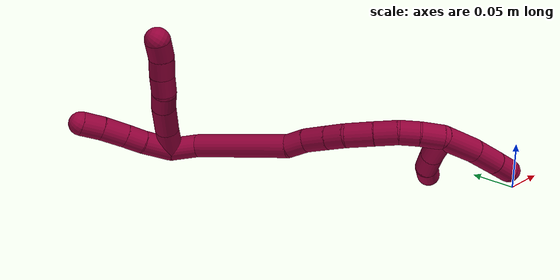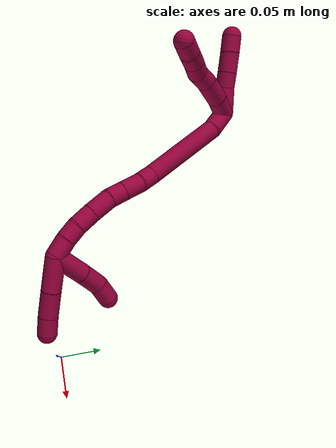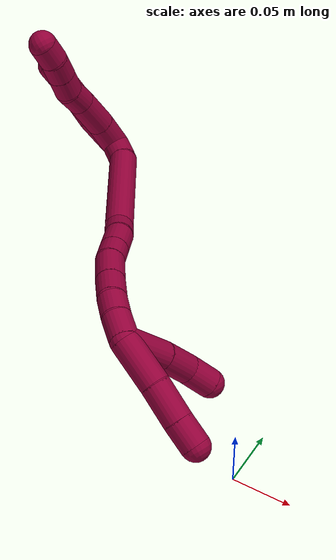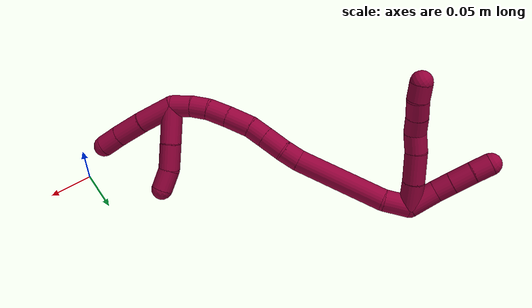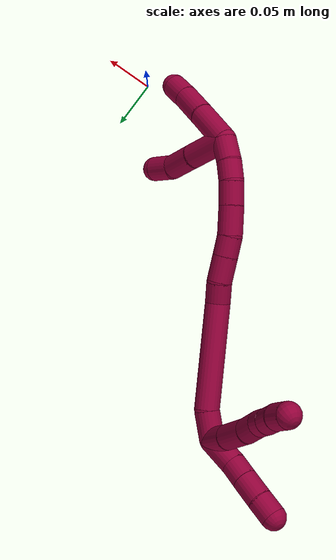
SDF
<sdf version="1.7">
 <world name="default">
  <model name="8">
   <static>0</static>
   <link name="8">
    <collision name="collision-cylinder-e_1_2_8">
     <pose>0.010787 -0.005074 0.010658 0.444302 0.740424 0.174884</pose>
     <geometry><cylinder><radius>0.0125</radius><length>0.03198</length></cylinder></geometry>
     <surface>
      <friction><ode><mu>1.16</mu><mu2>1.16</mu2><slip1>0</slip1><slip2>0</slip2></ode></friction>
      <contact><ode><kp>1e+06</kp><kd>1</kd><max_vel>0</max_vel><min_depth>0.001</min_depth></ode></contact>
     </surface>
    </collision>
    <visual name="visual-cylinder-e_1_2_8">
     <pose>0.010787 -0.005074 0.010658 0.444302 0.740424 0.174884</pose>
     <geometry><cylinder><radius>0.0125</radius><length>0.03198</length></cylinder></geometry>
     <material><ambient>0.584314 0 0.227451 1</ambient></material>
    </visual>
    <collision name="collision-cylinder-e_2_8_9">
     <pose>0.033629 -0.017035 0.032201 0.564128 0.752255 0.227902</pose>
     <geometry><cylinder><radius>0.0125</radius><length>0.035286</length></cylinder></geometry>
     <surface>
      <friction><ode><mu>1.16</mu><mu2>1.16</mu2><slip1>0</slip1><slip2>0</slip2></ode></friction>
      <contact><ode><kp>1e+06</kp><kd>1</kd><max_vel>0</max_vel><min_depth>0.001</min_depth></ode></contact>
     </surface>
    </collision>
    <visual name="visual-cylinder-e_2_8_9">
     <pose>0.033629 -0.017035 0.032201 0.564128 0.752255 0.227902</pose>
     <geometry><cylinder><radius>0.0125</radius><length>0.035286</length></cylinder></geometry>
     <material><ambient>0.584314 0 0.227451 1</ambient></material>
    </visual>
    <collision name="collision-cylinder-e_3_9_10">
     <pose>0.053692 -0.028954 0.048581 0.741494 0.82149 0.335411</pose>
     <geometry><cylinder><radius>0.0125</radius><length>0.021875</length></cylinder></geometry>
     <surface>
      <friction><ode><mu>1.16</mu><mu2>1.16</mu2><slip1>0</slip1><slip2>0</slip2></ode></friction>
      <contact><ode><kp>1e+06</kp><kd>1</kd><max_vel>0</max_vel><min_depth>0.001</min_depth></ode></contact>
     </surface>
    </collision>
    <visual name="visual-cylinder-e_3_9_10">
     <pose>0.053692 -0.028954 0.048581 0.741494 0.82149 0.335411</pose>
     <geometry><cylinder><radius>0.0125</radius><length>0.021875</length></cylinder></geometry>
     <material><ambient>0.584314 0 0.227451 1</ambient></material>
    </visual>
    <collision name="collision-cylinder-e_4_10_11">
     <pose>0.06923 -0.035838 0.060494 0.280936 0.845043 0.126975</pose>
     <geometry><cylinder><radius>0.0125</radius><length>0.020132</length></cylinder></geometry>
     <surface>
      <friction><ode><mu>1.16</mu><mu2>1.16</mu2><slip1>0</slip1><slip2>0</slip2></ode></friction>
      <contact><ode><kp>1e+06</kp><kd>1</kd><max_vel>0</max_vel><min_depth>0.001</min_depth></ode></contact>
     </surface>
    </collision>
    <visual name="visual-cylinder-e_4_10_11">
     <pose>0.06923 -0.035838 0.060494 0.280936 0.845043 0.126975</pose>
     <geometry><cylinder><radius>0.0125</radius><length>0.020132</length></cylinder></geometry>
     <material><ambient>0.584314 0 0.227451 1</ambient></material>
    </visual>
    <collision name="collision-cylinder-e_5_11_12">
     <pose>0.084904 -0.039887 0.072932 0.349855 0.904219 0.171245</pose>
     <geometry><cylinder><radius>0.0125</radius><length>0.020726</length></cylinder></geometry>
     <surface>
      <friction><ode><mu>1.16</mu><mu2>1.16</mu2><slip1>0</slip1><slip2>0</slip2></ode></friction>
      <contact><ode><kp>1e+06</kp><kd>1</kd><max_vel>0</max_vel><min_depth>0.001</min_depth></ode></contact>
     </surface>
    </collision>
    <visual name="visual-cylinder-e_5_11_12">
     <pose>0.084904 -0.039887 0.072932 0.349855 0.904219 0.171245</pose>
     <geometry><cylinder><radius>0.0125</radius><length>0.020726</length></cylinder></geometry>
     <material><ambient>0.584314 0 0.227451 1</ambient></material>
    </visual>
    <collision name="collision-cylinder-e_6_12_6">
     <pose>0.099655 -0.045051 0.085847 0.406473 0.721674 0.155221</pose>
     <geometry><cylinder><radius>0.0125</radius><length>0.020001</length></cylinder></geometry>
     <surface>
      <friction><ode><mu>1.16</mu><mu2>1.16</mu2><slip1>0</slip1><slip2>0</slip2></ode></friction>
      <contact><ode><kp>1e+06</kp><kd>1</kd><max_vel>0</max_vel><min_depth>0.001</min_depth></ode></contact>
     </surface>
    </collision>
    <visual name="visual-cylinder-e_6_12_6">
     <pose>0.099655 -0.045051 0.085847 0.406473 0.721674 0.155221</pose>
     <geometry><cylinder><radius>0.0125</radius><length>0.020001</length></cylinder></geometry>
     <material><ambient>0.584314 0 0.227451 1</ambient></material>
    </visual>
    <collision name="collision-cylinder-e_1_2_13">
     <pose>-0.003067 -0.002832 0.016227 0.172805 -0.184094 -0.015991</pose>
     <geometry><cylinder><radius>0.0125</radius><length>0.033512</length></cylinder></geometry>
     <surface>
      <friction><ode><mu>1.16</mu><mu2>1.16</mu2><slip1>0</slip1><slip2>0</slip2></ode></friction>
      <contact><ode><kp>1e+06</kp><kd>1</kd><max_vel>0</max_vel><min_depth>0.001</min_depth></ode></contact>
     </surface>
    </collision>
    <visual name="visual-cylinder-e_1_2_13">
     <pose>-0.003067 -0.002832 0.016227 0.172805 -0.184094 -0.015991</pose>
     <geometry><cylinder><radius>0.0125</radius><length>0.033512</length></cylinder></geometry>
     <material><ambient>0.584314 0 0.227451 1</ambient></material>
    </visual>
    <collision name="collision-cylinder-e_2_13_14">
     <pose>-0.007535 -0.006277 0.042404 0.061406 -0.139556 -0.004293</pose>
     <geometry><cylinder><radius>0.0125</radius><length>0.020132</length></cylinder></geometry>
     <surface>
      <friction><ode><mu>1.16</mu><mu2>1.16</mu2><slip1>0</slip1><slip2>0</slip2></ode></friction>
      <contact><ode><kp>1e+06</kp><kd>1</kd><max_vel>0</max_vel><min_depth>0.001</min_depth></ode></contact>
     </surface>
    </collision>
    <visual name="visual-cylinder-e_2_13_14">
     <pose>-0.007535 -0.006277 0.042404 0.061406 -0.139556 -0.004293</pose>
     <geometry><cylinder><radius>0.0125</radius><length>0.020132</length></cylinder></geometry>
     <material><ambient>0.584314 0 0.227451 1</ambient></material>
    </visual>
    <collision name="collision-cylinder-e_3_14_15">
     <pose>-0.010993 -0.007893 0.064771 0.080716 -0.163677 -0.006624</pose>
     <geometry><cylinder><radius>0.0125</radius><length>0.025255</length></cylinder></geometry>
     <surface>
      <friction><ode><mu>1.16</mu><mu2>1.16</mu2><slip1>0</slip1><slip2>0</slip2></ode></friction>
      <contact><ode><kp>1e+06</kp><kd>1</kd><max_vel>0</max_vel><min_depth>0.001</min_depth></ode></contact>
     </surface>
    </collision>
    <visual name="visual-cylinder-e_3_14_15">
     <pose>-0.010993 -0.007893 0.064771 0.080716 -0.163677 -0.006624</pose>
     <geometry><cylinder><radius>0.0125</radius><length>0.025255</length></cylinder></geometry>
     <material><ambient>0.584314 0 0.227451 1</ambient></material>
    </visual>
    <collision name="collision-cylinder-e_4_15_5">
     <pose>-0.015588 -0.01005 0.087365 0.112794 -0.242957 -0.013784</pose>
     <geometry><cylinder><radius>0.0125</radius><length>0.021101</length></cylinder></geometry>
     <surface>
      <friction><ode><mu>1.16</mu><mu2>1.16</mu2><slip1>0</slip1><slip2>0</slip2></ode></friction>
      <contact><ode><kp>1e+06</kp><kd>1</kd><max_vel>0</max_vel><min_depth>0.001</min_depth></ode></contact>
     </surface>
    </collision>
    <visual name="visual-cylinder-e_4_15_5">
     <pose>-0.015588 -0.01005 0.087365 0.112794 -0.242957 -0.013784</pose>
     <geometry><cylinder><radius>0.0125</radius><length>0.021101</length></cylinder></geometry>
     <material><ambient>0.584314 0 0.227451 1</ambient></material>
    </visual>
    <collision name="collision-cylinder-e_1_2_16">
     <pose>0.010803 -0.004199 -0.009583 2.72865 0.801387 2.2232</pose>
     <geometry><cylinder><radius>0.0125</radius><length>0.030078</length></cylinder></geometry>
     <surface>
      <friction><ode><mu>1.16</mu><mu2>1.16</mu2><slip1>0</slip1><slip2>0</slip2></ode></friction>
      <contact><ode><kp>1e+06</kp><kd>1</kd><max_vel>0</max_vel><min_depth>0.001</min_depth></ode></contact>
     </surface>
    </collision>
    <visual name="visual-cylinder-e_1_2_16">
     <pose>0.010803 -0.004199 -0.009583 2.72865 0.801387 2.2232</pose>
     <geometry><cylinder><radius>0.0125</radius><length>0.030078</length></cylinder></geometry>
     <material><ambient>0.584314 0 0.227451 1</ambient></material>
    </visual>
    <collision name="collision-cylinder-e_2_16_17">
     <pose>0.055228 -0.036414 -0.048511 2.37934 0.69202 1.46526</pose>
     <geometry><cylinder><radius>0.0125</radius><length>0.105385</length></cylinder></geometry>
     <surface>
      <friction><ode><mu>1.16</mu><mu2>1.16</mu2><slip1>0</slip1><slip2>0</slip2></ode></friction>
      <contact><ode><kp>1e+06</kp><kd>1</kd><max_vel>0</max_vel><min_depth>0.001</min_depth></ode></contact>
     </surface>
    </collision>
    <visual name="visual-cylinder-e_2_16_17">
     <pose>0.055228 -0.036414 -0.048511 2.37934 0.69202 1.46526</pose>
     <geometry><cylinder><radius>0.0125</radius><length>0.105385</length></cylinder></geometry>
     <material><ambient>0.584314 0 0.227451 1</ambient></material>
    </visual>
    <collision name="collision-cylinder-e_3_17_18">
     <pose>0.097676 -0.069011 -0.081654 2.26315 0.977522 1.69438</pose>
     <geometry><cylinder><radius>0.0125</radius><length>0.021288</length></cylinder></geometry>
     <surface>
      <friction><ode><mu>1.16</mu><mu2>1.16</mu2><slip1>0</slip1><slip2>0</slip2></ode></friction>
      <contact><ode><kp>1e+06</kp><kd>1</kd><max_vel>0</max_vel><min_depth>0.001</min_depth></ode></contact>
     </surface>
    </collision>
    <visual name="visual-cylinder-e_3_17_18">
     <pose>0.097676 -0.069011 -0.081654 2.26315 0.977522 1.69438</pose>
     <geometry><cylinder><radius>0.0125</radius><length>0.021288</length></cylinder></geometry>
     <material><ambient>0.584314 0 0.227451 1</ambient></material>
    </visual>
    <collision name="collision-cylinder-e_4_18_19">
     <pose>0.115676 -0.081326 -0.090342 2.13453 0.786708 1.29119</pose>
     <geometry><cylinder><radius>0.0125</radius><length>0.025917</length></cylinder></geometry>
     <surface>
      <friction><ode><mu>1.16</mu><mu2>1.16</mu2><slip1>0</slip1><slip2>0</slip2></ode></friction>
      <contact><ode><kp>1e+06</kp><kd>1</kd><max_vel>0</max_vel><min_depth>0.001</min_depth></ode></contact>
     </surface>
    </collision>
    <visual name="visual-cylinder-e_4_18_19">
     <pose>0.115676 -0.081326 -0.090342 2.13453 0.786708 1.29119</pose>
     <geometry><cylinder><radius>0.0125</radius><length>0.025917</length></cylinder></geometry>
     <material><ambient>0.584314 0 0.227451 1</ambient></material>
    </visual>
    <collision name="collision-cylinder-e_5_19_20">
     <pose>0.131979 -0.095044 -0.099139 2.14934 0.784173 1.3047</pose>
     <geometry><cylinder><radius>0.0125</radius><length>0.020187</length></cylinder></geometry>
     <surface>
      <friction><ode><mu>1.16</mu><mu2>1.16</mu2><slip1>0</slip1><slip2>0</slip2></ode></friction>
      <contact><ode><kp>1e+06</kp><kd>1</kd><max_vel>0</max_vel><min_depth>0.001</min_depth></ode></contact>
     </surface>
    </collision>
    <visual name="visual-cylinder-e_5_19_20">
     <pose>0.131979 -0.095044 -0.099139 2.14934 0.784173 1.3047</pose>
     <geometry><cylinder><radius>0.0125</radius><length>0.020187</length></cylinder></geometry>
     <material><ambient>0.584314 0 0.227451 1</ambient></material>
    </visual>
    <collision name="collision-cylinder-e_6_20_21">
     <pose>0.149134 -0.108032 -0.111137 2.428 0.752844 1.62942</pose>
     <geometry><cylinder><radius>0.0125</radius><length>0.029328</length></cylinder></geometry>
     <surface>
      <friction><ode><mu>1.16</mu><mu2>1.16</mu2><slip1>0</slip1><slip2>0</slip2></ode></friction>
      <contact><ode><kp>1e+06</kp><kd>1</kd><max_vel>0</max_vel><min_depth>0.001</min_depth></ode></contact>
     </surface>
    </collision>
    <visual name="visual-cylinder-e_6_20_21">
     <pose>0.149134 -0.108032 -0.111137 2.428 0.752844 1.62942</pose>
     <geometry><cylinder><radius>0.0125</radius><length>0.029328</length></cylinder></geometry>
     <material><ambient>0.584314 0 0.227451 1</ambient></material>
    </visual>
    <collision name="collision-cylinder-e_7_21_22">
     <pose>0.167307 -0.120353 -0.126276 2.49537 0.745227 1.72489</pose>
     <geometry><cylinder><radius>0.0125</radius><length>0.024029</length></cylinder></geometry>
     <surface>
      <friction><ode><mu>1.16</mu><mu2>1.16</mu2><slip1>0</slip1><slip2>0</slip2></ode></friction>
      <contact><ode><kp>1e+06</kp><kd>1</kd><max_vel>0</max_vel><min_depth>0.001</min_depth></ode></contact>
     </surface>
    </collision>
    <visual name="visual-cylinder-e_7_21_22">
     <pose>0.167307 -0.120353 -0.126276 2.49537 0.745227 1.72489</pose>
     <geometry><cylinder><radius>0.0125</radius><length>0.024029</length></cylinder></geometry>
     <material><ambient>0.584314 0 0.227451 1</ambient></material>
    </visual>
    <collision name="collision-cylinder-e_8_22_23">
     <pose>0.181139 -0.129403 -0.140732 2.67477 0.600923 1.83261</pose>
     <geometry><cylinder><radius>0.0125</radius><length>0.020111</length></cylinder></geometry>
     <surface>
      <friction><ode><mu>1.16</mu><mu2>1.16</mu2><slip1>0</slip1><slip2>0</slip2></ode></friction>
      <contact><ode><kp>1e+06</kp><kd>1</kd><max_vel>0</max_vel><min_depth>0.001</min_depth></ode></contact>
     </surface>
    </collision>
    <visual name="visual-cylinder-e_8_22_23">
     <pose>0.181139 -0.129403 -0.140732 2.67477 0.600923 1.83261</pose>
     <geometry><cylinder><radius>0.0125</radius><length>0.020111</length></cylinder></geometry>
     <material><ambient>0.584314 0 0.227451 1</ambient></material>
    </visual>
    <collision name="collision-cylinder-e_9_23_1">
     <pose>0.192553 -0.136544 -0.157923 2.80635 0.505058 1.98078</pose>
     <geometry><cylinder><radius>0.0125</radius><length>0.023679</length></cylinder></geometry>
     <surface>
      <friction><ode><mu>1.16</mu><mu2>1.16</mu2><slip1>0</slip1><slip2>0</slip2></ode></friction>
      <contact><ode><kp>1e+06</kp><kd>1</kd><max_vel>0</max_vel><min_depth>0.001</min_depth></ode></contact>
     </surface>
    </collision>
    <visual name="visual-cylinder-e_9_23_1">
     <pose>0.192553 -0.136544 -0.157923 2.80635 0.505058 1.98078</pose>
     <geometry><cylinder><radius>0.0125</radius><length>0.023679</length></cylinder></geometry>
     <material><ambient>0.584314 0 0.227451 1</ambient></material>
    </visual>
    <collision name="collision-cylinder-e_1_1_24">
     <pose>0.187026 -0.126089 -0.180343 -2.30989 -0.540459 1.12046</pose>
     <geometry><cylinder><radius>0.0125</radius><length>0.043752</length></cylinder></geometry>
     <surface>
      <friction><ode><mu>1.16</mu><mu2>1.16</mu2><slip1>0</slip1><slip2>0</slip2></ode></friction>
      <contact><ode><kp>1e+06</kp><kd>1</kd><max_vel>0</max_vel><min_depth>0.001</min_depth></ode></contact>
     </surface>
    </collision>
    <visual name="visual-cylinder-e_1_1_24">
     <pose>0.187026 -0.126089 -0.180343 -2.30989 -0.540459 1.12046</pose>
     <geometry><cylinder><radius>0.0125</radius><length>0.043752</length></cylinder></geometry>
     <material><ambient>0.584314 0 0.227451 1</ambient></material>
    </visual>
    <collision name="collision-cylinder-e_2_24_25">
     <pose>0.167111 -0.103543 -0.20256 -2.40535 -0.590136 1.33478</pose>
     <geometry><cylinder><radius>0.0125</radius><length>0.031123</length></cylinder></geometry>
     <surface>
      <friction><ode><mu>1.16</mu><mu2>1.16</mu2><slip1>0</slip1><slip2>0</slip2></ode></friction>
      <contact><ode><kp>1e+06</kp><kd>1</kd><max_vel>0</max_vel><min_depth>0.001</min_depth></ode></contact>
     </surface>
    </collision>
    <visual name="visual-cylinder-e_2_24_25">
     <pose>0.167111 -0.103543 -0.20256 -2.40535 -0.590136 1.33478</pose>
     <geometry><cylinder><radius>0.0125</radius><length>0.031123</length></cylinder></geometry>
     <material><ambient>0.584314 0 0.227451 1</ambient></material>
    </visual>
    <collision name="collision-cylinder-e_3_25_4">
     <pose>0.154377 -0.088226 -0.221999 -2.54922 -0.330307 0.999809</pose>
     <geometry><cylinder><radius>0.0125</radius><length>0.025125</length></cylinder></geometry>
     <surface>
      <friction><ode><mu>1.16</mu><mu2>1.16</mu2><slip1>0</slip1><slip2>0</slip2></ode></friction>
      <contact><ode><kp>1e+06</kp><kd>1</kd><max_vel>0</max_vel><min_depth>0.001</min_depth></ode></contact>
     </surface>
    </collision>
    <visual name="visual-cylinder-e_3_25_4">
     <pose>0.154377 -0.088226 -0.221999 -2.54922 -0.330307 0.999809</pose>
     <geometry><cylinder><radius>0.0125</radius><length>0.025125</length></cylinder></geometry>
     <material><ambient>0.584314 0 0.227451 1</ambient></material>
    </visual>
    <collision name="collision-cylinder-e_1_1_26">
     <pose>0.202037 -0.138974 -0.188704 -3.09499 0.176794 -2.62737</pose>
     <geometry><cylinder><radius>0.0125</radius><length>0.042704</length></cylinder></geometry>
     <surface>
      <friction><ode><mu>1.16</mu><mu2>1.16</mu2><slip1>0</slip1><slip2>0</slip2></ode></friction>
      <contact><ode><kp>1e+06</kp><kd>1</kd><max_vel>0</max_vel><min_depth>0.001</min_depth></ode></contact>
     </surface>
    </collision>
    <visual name="visual-cylinder-e_1_1_26">
     <pose>0.202037 -0.138974 -0.188704 -3.09499 0.176794 -2.62737</pose>
     <geometry><cylinder><radius>0.0125</radius><length>0.042704</length></cylinder></geometry>
     <material><ambient>0.584314 0 0.227451 1</ambient></material>
    </visual>
    <collision name="collision-cylinder-e_2_26_27">
     <pose>0.207338 -0.137596 -0.226333 -3.11764 0.092604 -2.63579</pose>
     <geometry><cylinder><radius>0.0125</radius><length>0.033418</length></cylinder></geometry>
     <surface>
      <friction><ode><mu>1.16</mu><mu2>1.16</mu2><slip1>0</slip1><slip2>0</slip2></ode></friction>
      <contact><ode><kp>1e+06</kp><kd>1</kd><max_vel>0</max_vel><min_depth>0.001</min_depth></ode></contact>
     </surface>
    </collision>
    <visual name="visual-cylinder-e_2_26_27">
     <pose>0.207338 -0.137596 -0.226333 -3.11764 0.092604 -2.63579</pose>
     <geometry><cylinder><radius>0.0125</radius><length>0.033418</length></cylinder></geometry>
     <material><ambient>0.584314 0 0.227451 1</ambient></material>
    </visual>
    <collision name="collision-cylinder-e_3_27_3">
     <pose>0.209778 -0.136302 -0.254837 -3.06623 0.075012 -1.56615</pose>
     <geometry><cylinder><radius>0.0125</radius><length>0.023878</length></cylinder></geometry>
     <surface>
      <friction><ode><mu>1.16</mu><mu2>1.16</mu2><slip1>0</slip1><slip2>0</slip2></ode></friction>
      <contact><ode><kp>1e+06</kp><kd>1</kd><max_vel>0</max_vel><min_depth>0.001</min_depth></ode></contact>
     </surface>
    </collision>
    <visual name="visual-cylinder-e_3_27_3">
     <pose>0.209778 -0.136302 -0.254837 -3.06623 0.075012 -1.56615</pose>
     <geometry><cylinder><radius>0.0125</radius><length>0.023878</length></cylinder></geometry>
     <material><ambient>0.584314 0 0.227451 1</ambient></material>
    </visual>
    <collision name="collision-sphere-3">
     <pose>0.210672 -0.135405 -0.266709 0 -0 0</pose>
     <geometry><sphere><radius>0.0125</radius></sphere></geometry>
     <surface>
      <friction><ode><mu>1.16</mu><mu2>1.16</mu2><slip1>0</slip1><slip2>0</slip2></ode></friction>
      <contact><ode><kp>1e+06</kp><kd>1</kd><max_vel>0</max_vel><min_depth>0.001</min_depth></ode></contact>
     </surface>
    </collision>
    <visual name="visual-sphere-3">
     <pose>0.210672 -0.135405 -0.266709 0 -0 0</pose>
     <geometry><sphere><radius>0.0125</radius></sphere></geometry>
     <material><ambient>0.584314 0 0.227451 1</ambient></material>
    </visual>
    <collision name="collision-sphere-27">
     <pose>0.208883 -0.137198 -0.242966 0 -0 0</pose>
     <geometry><sphere><radius>0.0125</radius></sphere></geometry>
     <surface>
      <friction><ode><mu>1.16</mu><mu2>1.16</mu2><slip1>0</slip1><slip2>0</slip2></ode></friction>
      <contact><ode><kp>1e+06</kp><kd>1</kd><max_vel>0</max_vel><min_depth>0.001</min_depth></ode></contact>
     </surface>
    </collision>
    <visual name="visual-sphere-27">
     <pose>0.208883 -0.137198 -0.242966 0 -0 0</pose>
     <geometry><sphere><radius>0.0125</radius></sphere></geometry>
     <material><ambient>0.584314 0 0.227451 1</ambient></material>
    </visual>
    <collision name="collision-sphere-26">
     <pose>0.205793 -0.137995 -0.2097 0 -0 0</pose>
     <geometry><sphere><radius>0.0125</radius></sphere></geometry>
     <surface>
      <friction><ode><mu>1.16</mu><mu2>1.16</mu2><slip1>0</slip1><slip2>0</slip2></ode></friction>
      <contact><ode><kp>1e+06</kp><kd>1</kd><max_vel>0</max_vel><min_depth>0.001</min_depth></ode></contact>
     </surface>
    </collision>
    <visual name="visual-sphere-26">
     <pose>0.205793 -0.137995 -0.2097 0 -0 0</pose>
     <geometry><sphere><radius>0.0125</radius></sphere></geometry>
     <material><ambient>0.584314 0 0.227451 1</ambient></material>
    </visual>
    <collision name="collision-sphere-4">
     <pose>0.150302 -0.081591 -0.231858 0 -0 0</pose>
     <geometry><sphere><radius>0.0125</radius></sphere></geometry>
     <surface>
      <friction><ode><mu>1.16</mu><mu2>1.16</mu2><slip1>0</slip1><slip2>0</slip2></ode></friction>
      <contact><ode><kp>1e+06</kp><kd>1</kd><max_vel>0</max_vel><min_depth>0.001</min_depth></ode></contact>
     </surface>
    </collision>
    <visual name="visual-sphere-4">
     <pose>0.150302 -0.081591 -0.231858 0 -0 0</pose>
     <geometry><sphere><radius>0.0125</radius></sphere></geometry>
     <material><ambient>0.584314 0 0.227451 1</ambient></material>
    </visual>
    <collision name="collision-sphere-25">
     <pose>0.158451 -0.094861 -0.21214 0 -0 0</pose>
     <geometry><sphere><radius>0.0125</radius></sphere></geometry>
     <surface>
      <friction><ode><mu>1.16</mu><mu2>1.16</mu2><slip1>0</slip1><slip2>0</slip2></ode></friction>
      <contact><ode><kp>1e+06</kp><kd>1</kd><max_vel>0</max_vel><min_depth>0.001</min_depth></ode></contact>
     </surface>
    </collision>
    <visual name="visual-sphere-25">
     <pose>0.158451 -0.094861 -0.21214 0 -0 0</pose>
     <geometry><sphere><radius>0.0125</radius></sphere></geometry>
     <material><ambient>0.584314 0 0.227451 1</ambient></material>
    </visual>
    <collision name="collision-sphere-24">
     <pose>0.17577 -0.112226 -0.192979 0 -0 0</pose>
     <geometry><sphere><radius>0.0125</radius></sphere></geometry>
     <surface>
      <friction><ode><mu>1.16</mu><mu2>1.16</mu2><slip1>0</slip1><slip2>0</slip2></ode></friction>
      <contact><ode><kp>1e+06</kp><kd>1</kd><max_vel>0</max_vel><min_depth>0.001</min_depth></ode></contact>
     </surface>
    </collision>
    <visual name="visual-sphere-24">
     <pose>0.17577 -0.112226 -0.192979 0 -0 0</pose>
     <geometry><sphere><radius>0.0125</radius></sphere></geometry>
     <material><ambient>0.584314 0 0.227451 1</ambient></material>
    </visual>
    <collision name="collision-sphere-1">
     <pose>0.198282 -0.139953 -0.167707 0 -0 0</pose>
     <geometry><sphere><radius>0.0125</radius></sphere></geometry>
     <surface>
      <friction><ode><mu>1.16</mu><mu2>1.16</mu2><slip1>0</slip1><slip2>0</slip2></ode></friction>
      <contact><ode><kp>1e+06</kp><kd>1</kd><max_vel>0</max_vel><min_depth>0.001</min_depth></ode></contact>
     </surface>
    </collision>
    <visual name="visual-sphere-1">
     <pose>0.198282 -0.139953 -0.167707 0 -0 0</pose>
     <geometry><sphere><radius>0.0125</radius></sphere></geometry>
     <material><ambient>0.584314 0 0.227451 1</ambient></material>
    </visual>
    <collision name="collision-sphere-23">
     <pose>0.186825 -0.133135 -0.148138 0 -0 0</pose>
     <geometry><sphere><radius>0.0125</radius></sphere></geometry>
     <surface>
      <friction><ode><mu>1.16</mu><mu2>1.16</mu2><slip1>0</slip1><slip2>0</slip2></ode></friction>
      <contact><ode><kp>1e+06</kp><kd>1</kd><max_vel>0</max_vel><min_depth>0.001</min_depth></ode></contact>
     </surface>
    </collision>
    <visual name="visual-sphere-23">
     <pose>0.186825 -0.133135 -0.148138 0 -0 0</pose>
     <geometry><sphere><radius>0.0125</radius></sphere></geometry>
     <material><ambient>0.584314 0 0.227451 1</ambient></material>
    </visual>
    <collision name="collision-sphere-22">
     <pose>0.175454 -0.12567 -0.133326 0 -0 0</pose>
     <geometry><sphere><radius>0.0125</radius></sphere></geometry>
     <surface>
      <friction><ode><mu>1.16</mu><mu2>1.16</mu2><slip1>0</slip1><slip2>0</slip2></ode></friction>
      <contact><ode><kp>1e+06</kp><kd>1</kd><max_vel>0</max_vel><min_depth>0.001</min_depth></ode></contact>
     </surface>
    </collision>
    <visual name="visual-sphere-22">
     <pose>0.175454 -0.12567 -0.133326 0 -0 0</pose>
     <geometry><sphere><radius>0.0125</radius></sphere></geometry>
     <material><ambient>0.584314 0 0.227451 1</ambient></material>
    </visual>
    <collision name="collision-sphere-21">
     <pose>0.159159 -0.115036 -0.119227 0 -0 0</pose>
     <geometry><sphere><radius>0.0125</radius></sphere></geometry>
     <surface>
      <friction><ode><mu>1.16</mu><mu2>1.16</mu2><slip1>0</slip1><slip2>0</slip2></ode></friction>
      <contact><ode><kp>1e+06</kp><kd>1</kd><max_vel>0</max_vel><min_depth>0.001</min_depth></ode></contact>
     </surface>
    </collision>
    <visual name="visual-sphere-21">
     <pose>0.159159 -0.115036 -0.119227 0 -0 0</pose>
     <geometry><sphere><radius>0.0125</radius></sphere></geometry>
     <material><ambient>0.584314 0 0.227451 1</ambient></material>
    </visual>
    <collision name="collision-sphere-12">
     <pose>0.093049 -0.042083 0.078952 0 -0 0</pose>
     <geometry><sphere><radius>0.0125</radius></sphere></geometry>
     <surface>
      <friction><ode><mu>1.16</mu><mu2>1.16</mu2><slip1>0</slip1><slip2>0</slip2></ode></friction>
      <contact><ode><kp>1e+06</kp><kd>1</kd><max_vel>0</max_vel><min_depth>0.001</min_depth></ode></contact>
     </surface>
    </collision>
    <visual name="visual-sphere-12">
     <pose>0.093049 -0.042083 0.078952 0 -0 0</pose>
     <geometry><sphere><radius>0.0125</radius></sphere></geometry>
     <material><ambient>0.584314 0 0.227451 1</ambient></material>
    </visual>
    <collision name="collision-sphere-11">
     <pose>0.076759 -0.03769 0.066913 0 -0 0</pose>
     <geometry><sphere><radius>0.0125</radius></sphere></geometry>
     <surface>
      <friction><ode><mu>1.16</mu><mu2>1.16</mu2><slip1>0</slip1><slip2>0</slip2></ode></friction>
      <contact><ode><kp>1e+06</kp><kd>1</kd><max_vel>0</max_vel><min_depth>0.001</min_depth></ode></contact>
     </surface>
    </collision>
    <visual name="visual-sphere-11">
     <pose>0.076759 -0.03769 0.066913 0 -0 0</pose>
     <geometry><sphere><radius>0.0125</radius></sphere></geometry>
     <material><ambient>0.584314 0 0.227451 1</ambient></material>
    </visual>
    <collision name="collision-sphere-10">
     <pose>0.061701 -0.033986 0.054075 0 -0 0</pose>
     <geometry><sphere><radius>0.0125</radius></sphere></geometry>
     <surface>
      <friction><ode><mu>1.16</mu><mu2>1.16</mu2><slip1>0</slip1><slip2>0</slip2></ode></friction>
      <contact><ode><kp>1e+06</kp><kd>1</kd><max_vel>0</max_vel><min_depth>0.001</min_depth></ode></contact>
     </surface>
    </collision>
    <visual name="visual-sphere-10">
     <pose>0.061701 -0.033986 0.054075 0 -0 0</pose>
     <geometry><sphere><radius>0.0125</radius></sphere></geometry>
     <material><ambient>0.584314 0 0.227451 1</ambient></material>
    </visual>
    <collision name="collision-sphere-9">
     <pose>0.045684 -0.023922 0.043087 0 -0 0</pose>
     <geometry><sphere><radius>0.0125</radius></sphere></geometry>
     <surface>
      <friction><ode><mu>1.16</mu><mu2>1.16</mu2><slip1>0</slip1><slip2>0</slip2></ode></friction>
      <contact><ode><kp>1e+06</kp><kd>1</kd><max_vel>0</max_vel><min_depth>0.001</min_depth></ode></contact>
     </surface>
    </collision>
    <visual name="visual-sphere-9">
     <pose>0.045684 -0.023922 0.043087 0 -0 0</pose>
     <geometry><sphere><radius>0.0125</radius></sphere></geometry>
     <material><ambient>0.584314 0 0.227451 1</ambient></material>
    </visual>
    <collision name="collision-sphere-2">
     <geometry><sphere><radius>0.0125</radius></sphere></geometry>
     <surface>
      <friction><ode><mu>1.16</mu><mu2>1.16</mu2><slip1>0</slip1><slip2>0</slip2></ode></friction>
      <contact><ode><kp>1e+06</kp><kd>1</kd><max_vel>0</max_vel><min_depth>0.001</min_depth></ode></contact>
     </surface>
    </collision>
    <visual name="visual-sphere-2">
     <geometry><sphere><radius>0.0125</radius></sphere></geometry>
     <material><ambient>0.584314 0 0.227451 1</ambient></material>
    </visual>
    <collision name="collision-sphere-19">
     <pose>0.124851 -0.089061 -0.095232 0 -0 0</pose>
     <geometry><sphere><radius>0.0125</radius></sphere></geometry>
     <surface>
      <friction><ode><mu>1.16</mu><mu2>1.16</mu2><slip1>0</slip1><slip2>0</slip2></ode></friction>
      <contact><ode><kp>1e+06</kp><kd>1</kd><max_vel>0</max_vel><min_depth>0.001</min_depth></ode></contact>
     </surface>
    </collision>
    <visual name="visual-sphere-19">
     <pose>0.124851 -0.089061 -0.095232 0 -0 0</pose>
     <geometry><sphere><radius>0.0125</radius></sphere></geometry>
     <material><ambient>0.584314 0 0.227451 1</ambient></material>
    </visual>
    <collision name="collision-sphere-8">
     <pose>0.021574 -0.010147 0.021315 0 -0 0</pose>
     <geometry><sphere><radius>0.0125</radius></sphere></geometry>
     <surface>
      <friction><ode><mu>1.16</mu><mu2>1.16</mu2><slip1>0</slip1><slip2>0</slip2></ode></friction>
      <contact><ode><kp>1e+06</kp><kd>1</kd><max_vel>0</max_vel><min_depth>0.001</min_depth></ode></contact>
     </surface>
    </collision>
    <visual name="visual-sphere-8">
     <pose>0.021574 -0.010147 0.021315 0 -0 0</pose>
     <geometry><sphere><radius>0.0125</radius></sphere></geometry>
     <material><ambient>0.584314 0 0.227451 1</ambient></material>
    </visual>
    <collision name="collision-sphere-6">
     <pose>0.106262 -0.048019 0.092743 0 -0 0</pose>
     <geometry><sphere><radius>0.0125</radius></sphere></geometry>
     <surface>
      <friction><ode><mu>1.16</mu><mu2>1.16</mu2><slip1>0</slip1><slip2>0</slip2></ode></friction>
      <contact><ode><kp>1e+06</kp><kd>1</kd><max_vel>0</max_vel><min_depth>0.001</min_depth></ode></contact>
     </surface>
    </collision>
    <visual name="visual-sphere-6">
     <pose>0.106262 -0.048019 0.092743 0 -0 0</pose>
     <geometry><sphere><radius>0.0125</radius></sphere></geometry>
     <material><ambient>0.584314 0 0.227451 1</ambient></material>
    </visual>
    <collision name="collision-sphere-13">
     <pose>-0.006135 -0.005665 0.032455 0 -0 0</pose>
     <geometry><sphere><radius>0.0125</radius></sphere></geometry>
     <surface>
      <friction><ode><mu>1.16</mu><mu2>1.16</mu2><slip1>0</slip1><slip2>0</slip2></ode></friction>
      <contact><ode><kp>1e+06</kp><kd>1</kd><max_vel>0</max_vel><min_depth>0.001</min_depth></ode></contact>
     </surface>
    </collision>
    <visual name="visual-sphere-13">
     <pose>-0.006135 -0.005665 0.032455 0 -0 0</pose>
     <geometry><sphere><radius>0.0125</radius></sphere></geometry>
     <material><ambient>0.584314 0 0.227451 1</ambient></material>
    </visual>
    <collision name="collision-sphere-14">
     <pose>-0.008935 -0.006888 0.052353 0 -0 0</pose>
     <geometry><sphere><radius>0.0125</radius></sphere></geometry>
     <surface>
      <friction><ode><mu>1.16</mu><mu2>1.16</mu2><slip1>0</slip1><slip2>0</slip2></ode></friction>
      <contact><ode><kp>1e+06</kp><kd>1</kd><max_vel>0</max_vel><min_depth>0.001</min_depth></ode></contact>
     </surface>
    </collision>
    <visual name="visual-sphere-14">
     <pose>-0.008935 -0.006888 0.052353 0 -0 0</pose>
     <geometry><sphere><radius>0.0125</radius></sphere></geometry>
     <material><ambient>0.584314 0 0.227451 1</ambient></material>
    </visual>
    <collision name="collision-sphere-15">
     <pose>-0.01305 -0.008897 0.07719 0 -0 0</pose>
     <geometry><sphere><radius>0.0125</radius></sphere></geometry>
     <surface>
      <friction><ode><mu>1.16</mu><mu2>1.16</mu2><slip1>0</slip1><slip2>0</slip2></ode></friction>
      <contact><ode><kp>1e+06</kp><kd>1</kd><max_vel>0</max_vel><min_depth>0.001</min_depth></ode></contact>
     </surface>
    </collision>
    <visual name="visual-sphere-15">
     <pose>-0.01305 -0.008897 0.07719 0 -0 0</pose>
     <geometry><sphere><radius>0.0125</radius></sphere></geometry>
     <material><ambient>0.584314 0 0.227451 1</ambient></material>
    </visual>
    <collision name="collision-sphere-5">
     <pose>-0.018127 -0.011203 0.097541 0 -0 0</pose>
     <geometry><sphere><radius>0.0125</radius></sphere></geometry>
     <surface>
      <friction><ode><mu>1.16</mu><mu2>1.16</mu2><slip1>0</slip1><slip2>0</slip2></ode></friction>
      <contact><ode><kp>1e+06</kp><kd>1</kd><max_vel>0</max_vel><min_depth>0.001</min_depth></ode></contact>
     </surface>
    </collision>
    <visual name="visual-sphere-5">
     <pose>-0.018127 -0.011203 0.097541 0 -0 0</pose>
     <geometry><sphere><radius>0.0125</radius></sphere></geometry>
     <material><ambient>0.584314 0 0.227451 1</ambient></material>
    </visual>
    <collision name="collision-sphere-16">
     <pose>0.021605 -0.008397 -0.019167 0 -0 0</pose>
     <geometry><sphere><radius>0.0125</radius></sphere></geometry>
     <surface>
      <friction><ode><mu>1.16</mu><mu2>1.16</mu2><slip1>0</slip1><slip2>0</slip2></ode></friction>
      <contact><ode><kp>1e+06</kp><kd>1</kd><max_vel>0</max_vel><min_depth>0.001</min_depth></ode></contact>
     </surface>
    </collision>
    <visual name="visual-sphere-16">
     <pose>0.021605 -0.008397 -0.019167 0 -0 0</pose>
     <geometry><sphere><radius>0.0125</radius></sphere></geometry>
     <material><ambient>0.584314 0 0.227451 1</ambient></material>
    </visual>
    <collision name="collision-sphere-17">
     <pose>0.088851 -0.06443 -0.077855 0 -0 0</pose>
     <geometry><sphere><radius>0.0125</radius></sphere></geometry>
     <surface>
      <friction><ode><mu>1.16</mu><mu2>1.16</mu2><slip1>0</slip1><slip2>0</slip2></ode></friction>
      <contact><ode><kp>1e+06</kp><kd>1</kd><max_vel>0</max_vel><min_depth>0.001</min_depth></ode></contact>
     </surface>
    </collision>
    <visual name="visual-sphere-17">
     <pose>0.088851 -0.06443 -0.077855 0 -0 0</pose>
     <geometry><sphere><radius>0.0125</radius></sphere></geometry>
     <material><ambient>0.584314 0 0.227451 1</ambient></material>
    </visual>
    <collision name="collision-sphere-18">
     <pose>0.106501 -0.073591 -0.085453 0 -0 0</pose>
     <geometry><sphere><radius>0.0125</radius></sphere></geometry>
     <surface>
      <friction><ode><mu>1.16</mu><mu2>1.16</mu2><slip1>0</slip1><slip2>0</slip2></ode></friction>
      <contact><ode><kp>1e+06</kp><kd>1</kd><max_vel>0</max_vel><min_depth>0.001</min_depth></ode></contact>
     </surface>
    </collision>
    <visual name="visual-sphere-18">
     <pose>0.106501 -0.073591 -0.085453 0 -0 0</pose>
     <geometry><sphere><radius>0.0125</radius></sphere></geometry>
     <material><ambient>0.584314 0 0.227451 1</ambient></material>
    </visual>
    <collision name="collision-sphere-20">
     <pose>0.139108 -0.101027 -0.103047 0 -0 0</pose>
     <geometry><sphere><radius>0.0125</radius></sphere></geometry>
     <surface>
      <friction><ode><mu>1.16</mu><mu2>1.16</mu2><slip1>0</slip1><slip2>0</slip2></ode></friction>
      <contact><ode><kp>1e+06</kp><kd>1</kd><max_vel>0</max_vel><min_depth>0.001</min_depth></ode></contact>
     </surface>
    </collision>
    <visual name="visual-sphere-20">
     <pose>0.139108 -0.101027 -0.103047 0 -0 0</pose>
     <geometry><sphere><radius>0.0125</radius></sphere></geometry>
     <material><ambient>0.584314 0 0.227451 1</ambient></material>
    </visual>
    <inertial>
     <pose>0.100404 -0.067436 -0.071948 0 -0 0</pose>
     <mass>0.75</mass>
     <inertia>
      <ixx>0.000136</ixx>
      <ixy>0</ixy>
      <ixz>0</ixz>
      <iyy>0.000167</iyy>
      <iyz>0</iyz>
      <izz>-3.3e-05</izz>
     </inertia>
    </inertial>
   </link>
   <pose>-0.272513 0.264078 0.043826 0.217451 -0.905638 -0.637448</pose>
  </model>
 </world>
</sdf>
